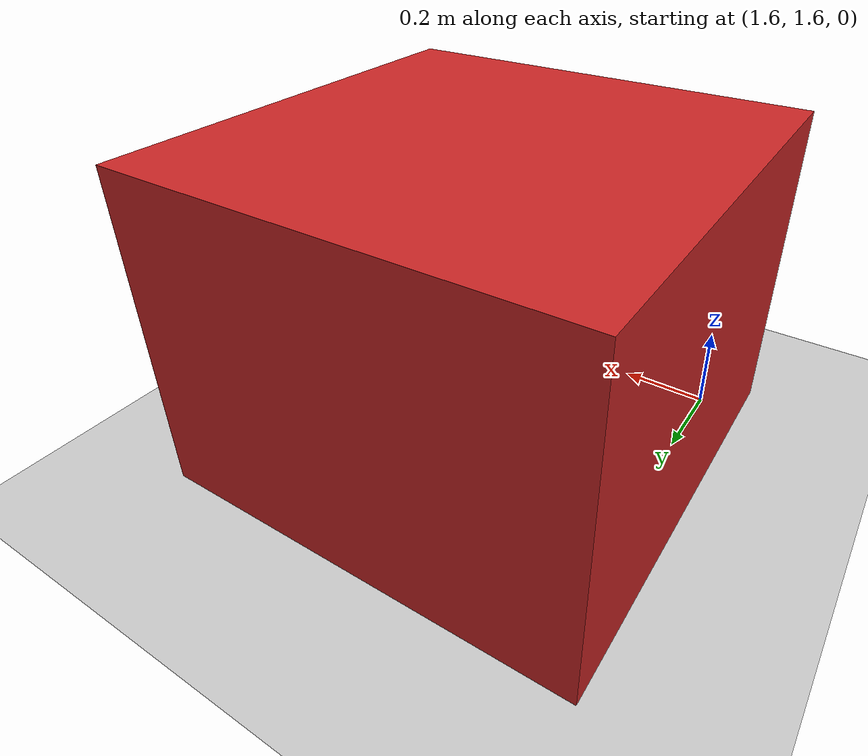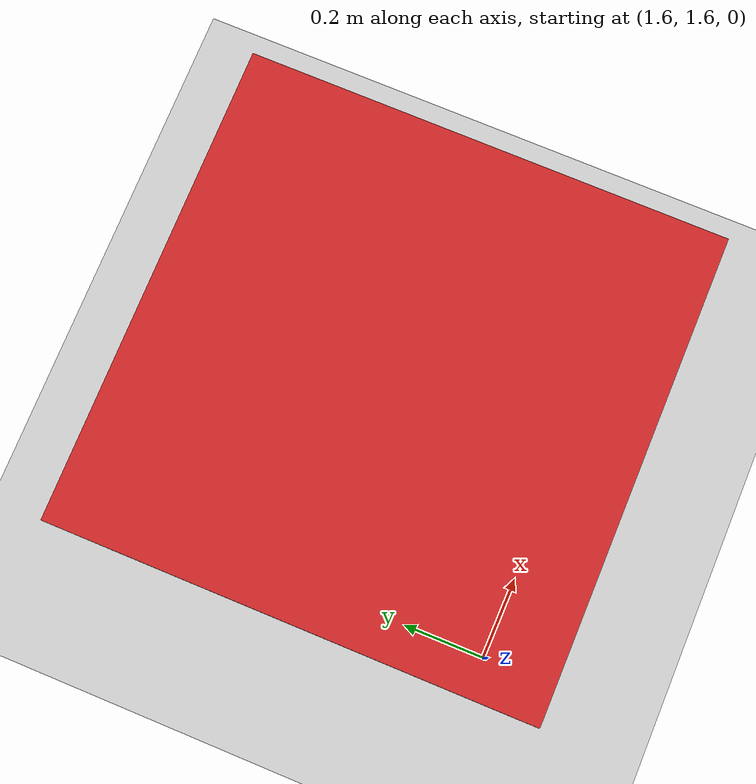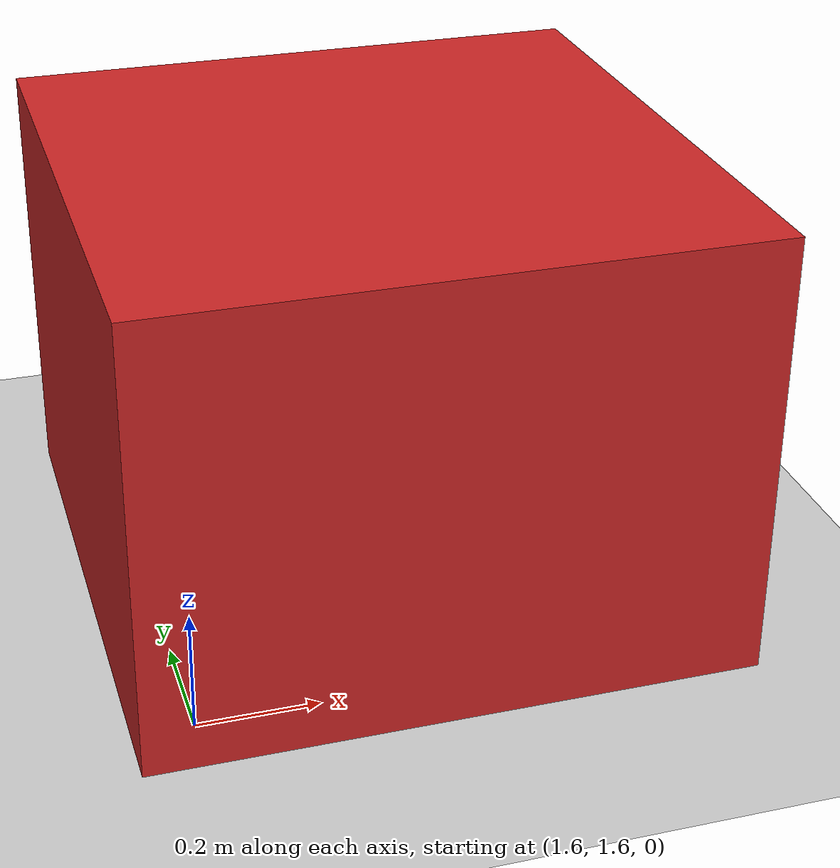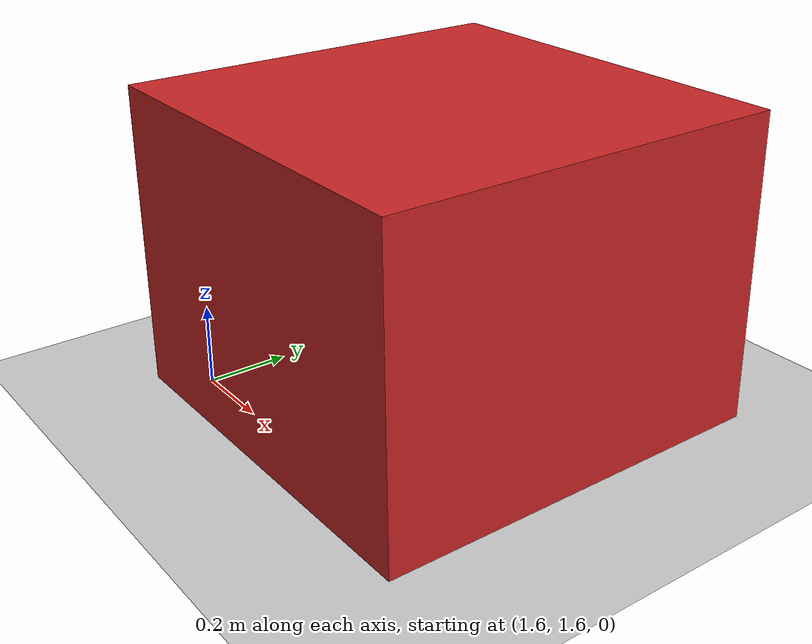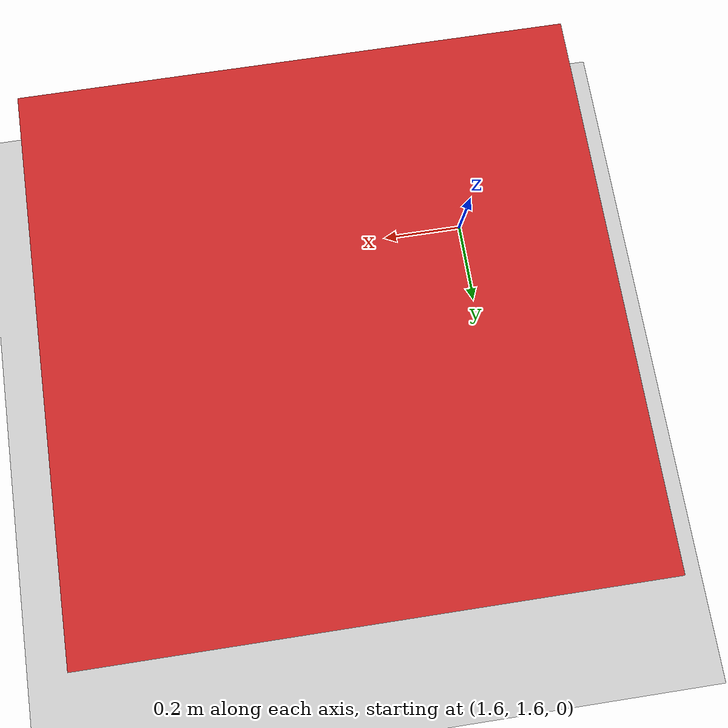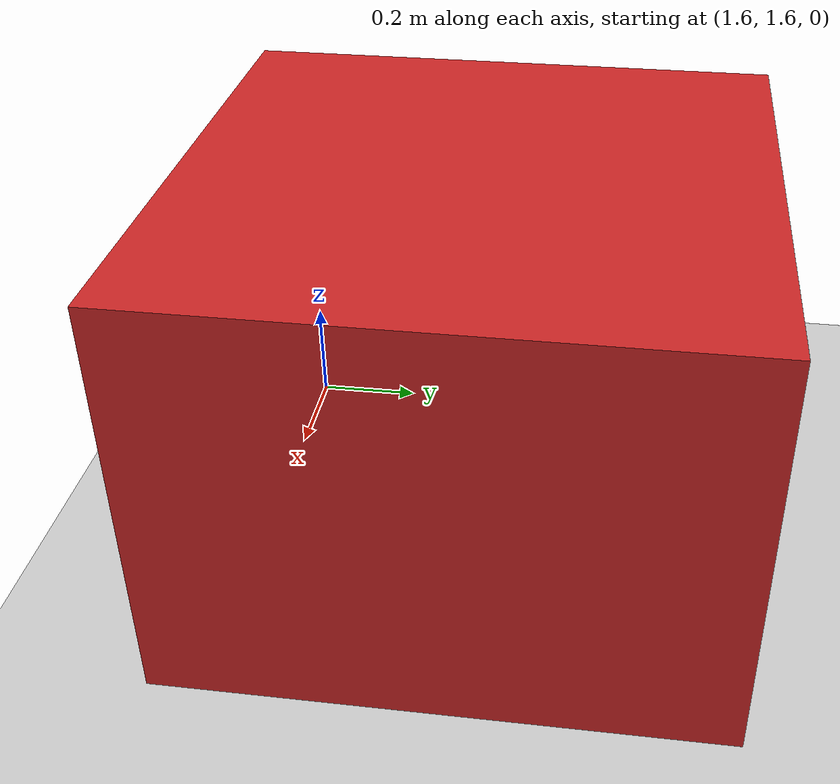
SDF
<!-- File: worlds/custom_lab.world -->
<?xml version="1.0" ?>
<sdf version="1.4">
  <world name="custom_lab">
    <include>
      <uri>model://ground_plane</uri>
    </include>
    <include>
      <uri>model://sun</uri>
    </include>

    <!-- Example object -->
    <model name="lab_table">
      <static>true</static>
      <link name="table_link">
        <visual name="visual">
          <geometry>
            <box>
              <size>1 1 0.75</size>
            </box>
          </geometry>
          <material>
            <script>
              <uri>file://media/materials/scripts/gazebo.material</uri>
              <name>Gazebo/Red</name>
            </script>
          </material>
        </visual>
        <pose>2 2 0.375 0 0 0</pose>
      </link>
    </model>
  </world>
</sdf>
